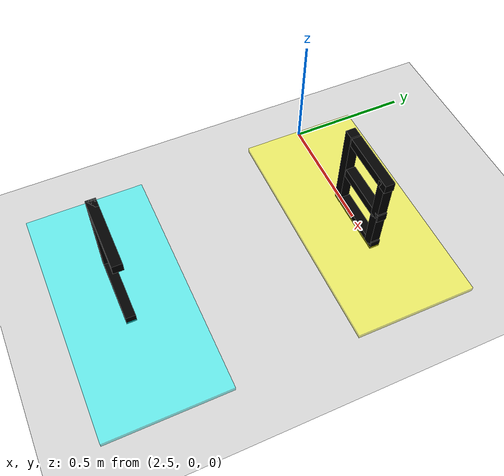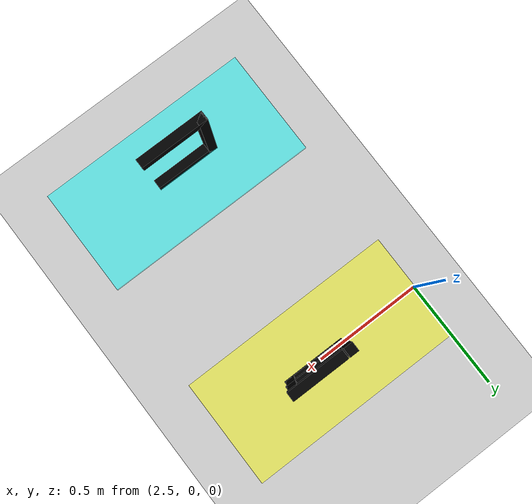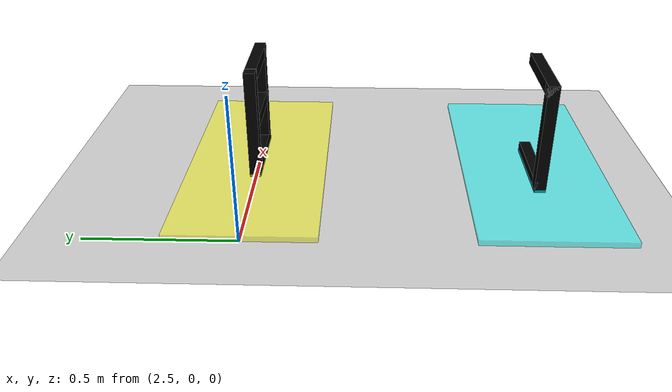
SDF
<sdf version="1.4">
 <world name="default">
  <model name="ground_plane">
   <static>1</static>
   <link name="link">
    <collision name="collision">
     <geometry><plane><normal>0 0 1</normal><size>100 100</size></plane></geometry>
     <surface><friction><ode><mu>100</mu><mu2>50</mu2></ode></friction></surface>
    </collision>
    <visual name="visual">
     <cast_shadows>0</cast_shadows>
     <geometry><plane><normal>0 0 1</normal><size>100 100</size></plane></geometry>
     <material>
      <script><uri>file://media/materials/scripts/gazebo.material</uri><name>Gazebo/Grey</name></script>
     </material>
    </visual>
    <velocity_decay><linear>0</linear><angular>0</angular></velocity_decay>
   </link>
  </model>
  <model name="zone_b">
   <static>true</static>
   <pose>3.0 0.0 0.01 0 0 0</pose>
   <link name="base">
    <visual name="visual">
     <geometry><box><size>1.0 0.5 0.02</size></box></geometry>
     <material><ambient>1 1 0 0.5</ambient><diffuse>1 1 0 0.5</diffuse></material>
    </visual>
   </link>
   <link name="letter_B_vertical_stroke">
    <pose>-0.1 0 0.2 0 0 0</pose>
    <visual name="v">
     <geometry><box><size>0.04 0.04 0.4</size></box></geometry>
     <material><ambient>0 0 0 1</ambient><diffuse>0 0 0 1</diffuse></material>
    </visual>
   </link>
   <link name="letter_B_top_horizontal">
    <pose>0.05 0 0.38 0 0 0</pose>
    <visual name="v">
     <geometry><box><size>0.25 0.04 0.04</size></box></geometry>
     <material><ambient>0 0 0 1</ambient><diffuse>0 0 0 1</diffuse></material>
    </visual>
   </link>
   <link name="letter_B_middle_horizontal">
    <pose>0.05 0 0.2 0 0 0</pose>
    <visual name="v">
     <geometry><box><size>0.25 0.04 0.04</size></box></geometry>
     <material><ambient>0 0 0 1</ambient><diffuse>0 0 0 1</diffuse></material>
    </visual>
   </link>
   <link name="letter_B_bottom_horizontal">
    <pose>0.05 0 0.02 0 0 0</pose>
    <visual name="v">
     <geometry><box><size>0.25 0.04 0.04</size></box></geometry>
     <material><ambient>0 0 0 1</ambient><diffuse>0 0 0 1</diffuse></material>
    </visual>
   </link>
   <link name="letter_B_top_vertical_stroke">
    <pose>0.15 0 0.29 0 0 0</pose>
    <visual name="v">
     <geometry><box><size>0.04 0.04 0.2</size></box></geometry>
     <material><ambient>0 0 0 1</ambient><diffuse>0 0 0 1</diffuse></material>
    </visual>
   </link>
   <link name="letter_B_bottom_vertical_stroke">
    <pose>0.15 0 0.11 0 0 0</pose>
    <visual name="v">
     <geometry><box><size>0.04 0.04 0.2</size></box></geometry>
     <material><ambient>0 0 0 1</ambient><diffuse>0 0 0 1</diffuse></material>
    </visual>
   </link>
  </model>
  <model name="zone_c">
   <static>true</static>
   <pose>3.0 -1.0 0.01 0 0 0</pose>
   <link name="base">
    <visual name="visual">
     <geometry><box><size>1.0 0.5 0.02</size></box></geometry>
     <material><ambient>0 1 1 0.5</ambient><diffuse>0 1 1 0.5</diffuse></material>
    </visual>
   </link>
   <link name="letter_C_1">
    <pose>-0.05 0 0.38 0 0 0</pose>
    <visual name="v">
     <geometry><box><size>0.3 0.04 0.04</size></box></geometry>
     <material><ambient>0 0 0 1</ambient><diffuse>0 0 0 1</diffuse></material>
    </visual>
   </link>
   <link name="letter_C_2">
    <pose>-0.05 0 0.02 0 0 0</pose>
    <visual name="v">
     <geometry><box><size>0.3 0.04 0.04</size></box></geometry>
     <material><ambient>0 0 0 1</ambient><diffuse>0 0 0 1</diffuse></material>
    </visual>
   </link>
   <link name="letter_C_3">
    <pose>-0.18 0 0.2 0 0 0</pose>
    <visual name="v">
     <geometry><box><size>0.04 0.04 0.4</size></box></geometry>
     <material><ambient>0 0 0 1</ambient><diffuse>0 0 0 1</diffuse></material>
    </visual>
   </link>
  </model>
 </world>
</sdf>
